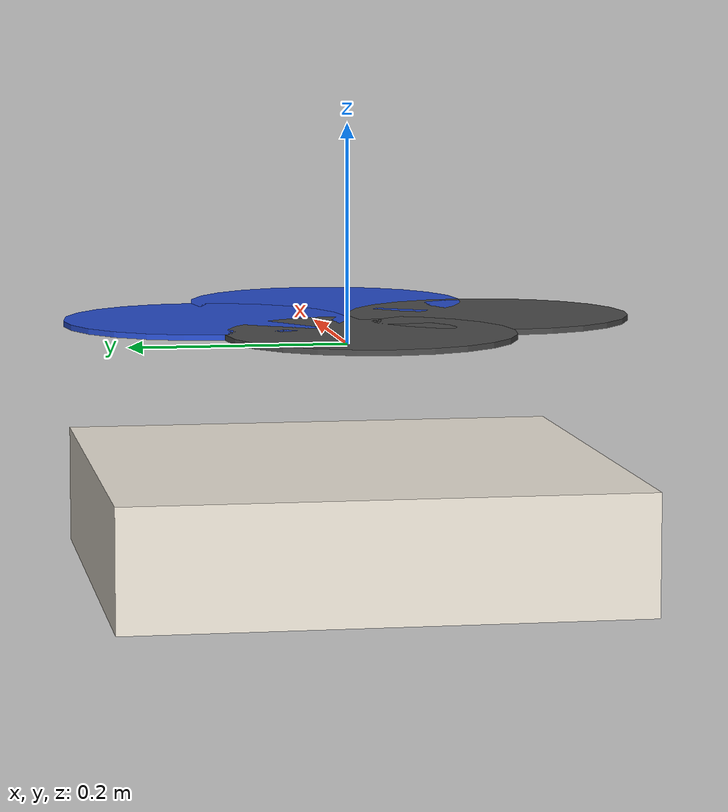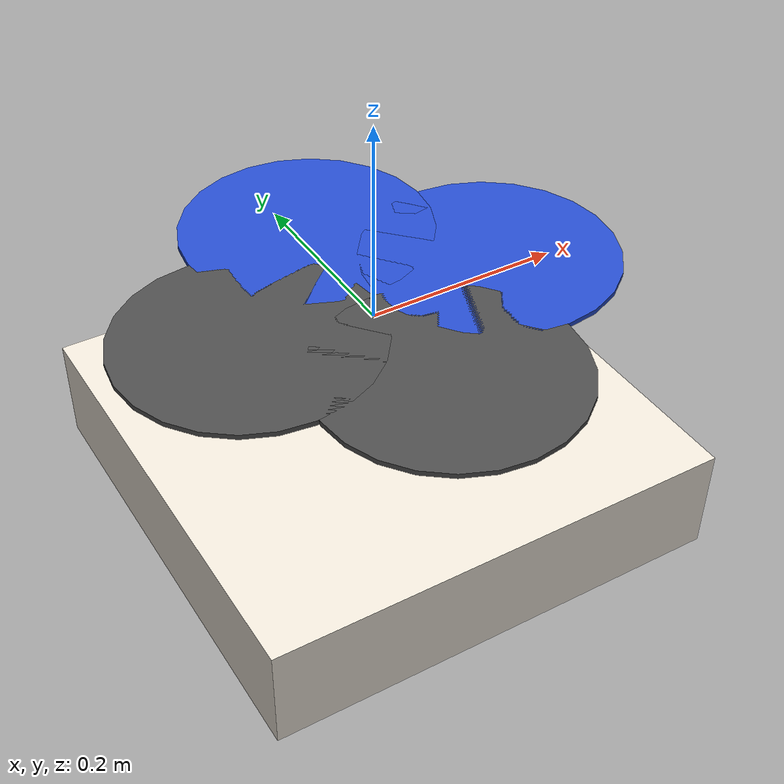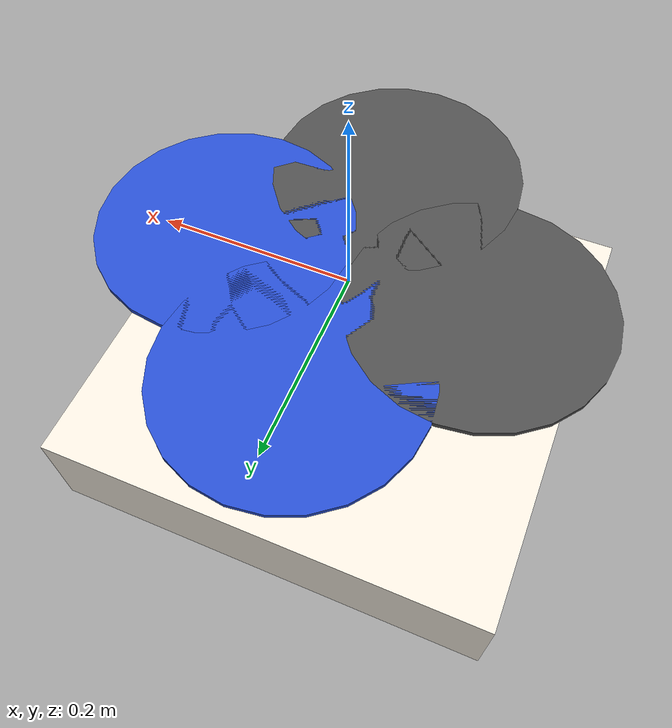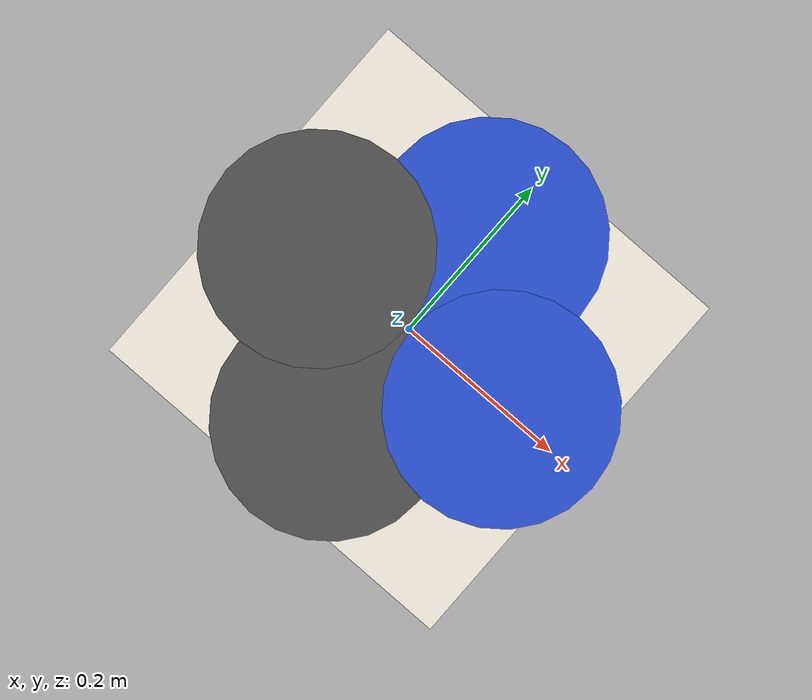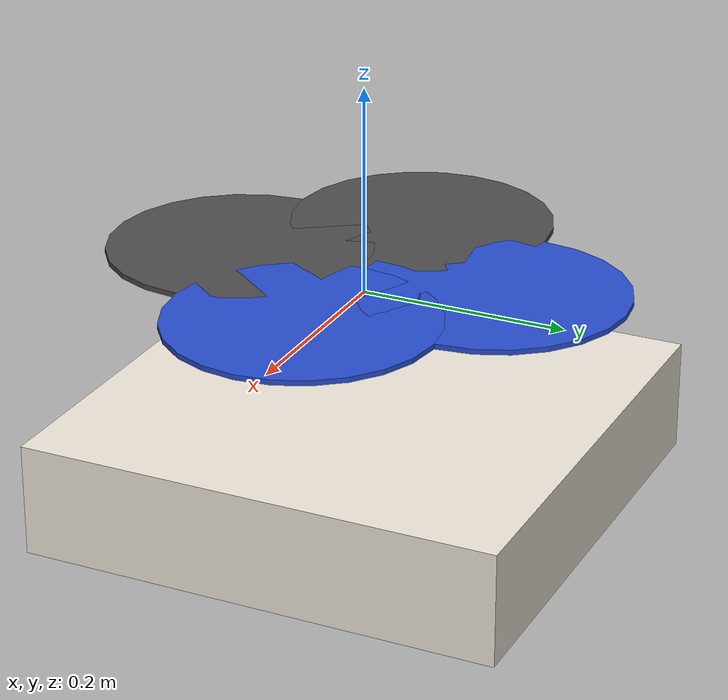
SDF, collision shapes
<!-- thaqib_1_prototype: identical physics to rocket_drone, different visual mesh -->
<sdf version='1.6'>
  <model name='thaqib_1_prototype'>
    <link name='base_link'>
      <pose>0 0 0 0 0 0</pose>
      <inertial>
        <pose>0 0 0 0 0 0</pose>
        <mass>0.448522</mass>
        <inertia>
          <ixx>0.00870895</ixx>
          <ixy>0</ixy>
          <ixz>0</ixz>
          <iyy>0.00870895</iyy>
          <iyz>0</iyz>
          <izz>0.0165132</izz>
        </inertia>
      </inertial>
      <collision name='base_link_inertia_collision'>
        <!-- Box height is 0.11m, so -0.16 keeps its bottom at z=0 instead of intersecting terrain -->
        <pose>0 0 -0.16 0 0 0</pose>
        <geometry>
          <box>
            <size>0.47 0.47 0.11</size>
          </box>
        </geometry>
        <surface>
          <contact>
            <ode>
              <max_vel>100.0</max_vel>
              <min_depth>0.001</min_depth>
            </ode>
          </contact>
          <friction>
            <ode>
              <mu>1.0</mu>
              <mu2>1.0</mu2>
            </ode>
          </friction>
          <collide_bitmask>0x01</collide_bitmask>
        </surface>
      </collision>
      <visual name='base_link_inertia_visual'>
        <pose>0 0 -0.10 0 0 0</pose>
        <geometry>
          <mesh>
            <scale>0.001 0.001 0.001</scale>
            <uri>model://thaqib_1_prototype/meshes/thaqib_1_prototype.stl</uri>
          </mesh>
        </geometry>
        <material>
          <ambient>0.93 0.90 0.85 1</ambient>
          <diffuse>0.93 0.90 0.85 1</diffuse>
          <specular>0.3 0.3 0.3 1</specular>
        </material>
      </visual>
      <!-- FPV camera sensor (30 degrees below horizon) -->
      <sensor name='fpv_cam' type='camera'>
        <pose>0 0 0.262 0 -1.396263402 0</pose>
        <camera>
          <horizontal_fov>2.0</horizontal_fov>
          <image>
            <width>640</width>
            <height>480</height>
          </image>
          <clip>
            <near>0.05</near>
            <far>15000</far>
          </clip>
        </camera>
        <always_on>1</always_on>
        <update_rate>30</update_rate>
        <visualize>1</visualize>
      </sensor>
      <!-- Chase camera sensor (third-person follow view) -->
      <sensor name='chase_cam' type='camera'>
        <pose>-1.5 0 0.8 0 0.5236 0</pose>
        <camera>
          <horizontal_fov>1.4</horizontal_fov>
          <image>
            <width>640</width>
            <height>480</height>
          </image>
          <clip>
            <near>0.1</near>
            <far>15000</far>
          </clip>
        </camera>
        <always_on>1</always_on>
        <update_rate>30</update_rate>
        <visualize>0</visualize>
      </sensor>
      <gravity>1</gravity>
    </link>
    <link name='imu_link'>
      <pose>0 0 0.02 0 0 0</pose>
      <inertial>
        <pose>0 0 0 0 0 0</pose>
        <mass>0.015</mass>
        <inertia>
          <ixx>1e-05</ixx>
          <ixy>0</ixy>
          <ixz>0</ixz>
          <iyy>1e-05</iyy>
          <iyz>0</iyz>
          <izz>1e-05</izz>
        </inertia>
      </inertial>
      <sensor name="imu_sensor" type="imu">
        <pose>0 0 0 3.141593 0 0</pose>
        <always_on>1</always_on>
        <update_rate>1000.0</update_rate>
      </sensor>
    </link>
    <joint name='imu_joint' type='revolute'>
      <child>imu_link</child>
      <parent>base_link</parent>
      <axis>
        <xyz>0 0 1</xyz>
        <limit>
          <lower>0</lower>
          <upper>0</upper>
          <effort>0</effort>
          <velocity>0</velocity>
        </limit>
        <dynamics>
          <damping>1.0</damping>
        </dynamics>
      </axis>
      <physics>
        <ode>
          <implicit_spring_damper>1</implicit_spring_damper>
        </ode>
      </physics>
    </joint>
    <link name='rotor_0'>
      <pose>0.130 0 0.023 0 0 0</pose>
      <inertial>
        <pose>0 0 0 0 0 0</pose>
        <mass>0.005</mass>
        <inertia>
          <ixx>9.75e-07</ixx>
          <ixy>0</ixy>
          <ixz>0</ixz>
          <iyy>0.000273104</iyy>
          <iyz>0</iyz>
          <izz>0.000274004</izz>
        </inertia>
      </inertial>
      <collision name='rotor_0_collision'>
        <pose>0 0 0 0 0 0</pose>
        <geometry>
          <cylinder>
            <length>0.005</length>
            <radius>0.128</radius>
          </cylinder>
        </geometry>
        <surface>
          <contact>
            <ode/>
          </contact>
          <friction>
            <ode/>
          </friction>
          <collide_bitmask>0x02</collide_bitmask>
        </surface>
      </collision>
      <visual name='rotor_0_visual'>
        <pose>-0.01 0 -0.11 0 0 0</pose>
        <geometry>
          <mesh>
            <scale>0.5 0.5 0.5</scale>
            <uri>model://thaqib_1_prototype/meshes/rocket_drone_prop_ccw.dae</uri>
          </mesh>
        </geometry>
        <material>
          <script>
            <name>Gazebo/Blue</name>
            <uri>file://media/materials/scripts/gazebo.material</uri>
          </script>
        </material>
      </visual>
      <gravity>1</gravity>
      <velocity_decay/>
    </link>
    <joint name='rotor_0_joint' type='revolute'>
      <child>rotor_0</child>
      <parent>base_link</parent>
      <axis>
        <xyz>0 0 1</xyz>
        <limit>
          <lower>-1e+16</lower>
          <upper>1e+16</upper>
        </limit>
        <dynamics>
          <damping>0.004</damping>
        </dynamics>
      </axis>
      <physics>
        <ode>
          <implicit_spring_damper>1</implicit_spring_damper>
        </ode>
      </physics>
    </joint>
    <link name='rotor_1'>
      <pose>-0.130 0 0.023 0 0 0</pose>
      <inertial>
        <pose>0 0 0 0 0 0</pose>
        <mass>0.005</mass>
        <inertia>
          <ixx>9.75e-07</ixx>
          <ixy>0</ixy>
          <ixz>0</ixz>
          <iyy>0.000273104</iyy>
          <iyz>0</iyz>
          <izz>0.000274004</izz>
        </inertia>
      </inertial>
      <collision name='rotor_1_collision'>
        <pose>0 0 0 0 0 0</pose>
        <geometry>
          <cylinder>
            <length>0.005</length>
            <radius>0.128</radius>
          </cylinder>
        </geometry>
        <surface>
          <contact>
            <ode/>
          </contact>
          <friction>
            <ode/>
          </friction>
          <collide_bitmask>0x02</collide_bitmask>
        </surface>
      </collision>
      <visual name='rotor_1_visual'>
        <pose>0.01 0 -0.11 0 0 0</pose>
        <geometry>
          <mesh>
            <scale>0.5 0.5 0.5</scale>
            <uri>model://thaqib_1_prototype/meshes/rocket_drone_prop_ccw.dae</uri>
          </mesh>
        </geometry>
        <material>
          <script>
            <name>Gazebo/DarkGrey</name>
            <uri>file://media/materials/scripts/gazebo.material</uri>
          </script>
        </material>
      </visual>
      <gravity>1</gravity>
      <velocity_decay/>
    </link>
    <joint name='rotor_1_joint' type='revolute'>
      <child>rotor_1</child>
      <parent>base_link</parent>
      <axis>
        <xyz>0 0 1</xyz>
        <limit>
          <lower>-1e+16</lower>
          <upper>1e+16</upper>
        </limit>
        <dynamics>
          <damping>0.004</damping>
        </dynamics>
      </axis>
      <physics>
        <ode>
          <implicit_spring_damper>1</implicit_spring_damper>
        </ode>
      </physics>
    </joint>
    <link name='rotor_2'>
      <pose>0 0.130 0.023 0 0 0</pose>
      <inertial>
        <pose>0 0 0 0 0 0</pose>
        <mass>0.005</mass>
        <inertia>
          <ixx>9.75e-07</ixx>
          <ixy>0</ixy>
          <ixz>0</ixz>
          <iyy>0.000273104</iyy>
          <iyz>0</iyz>
          <izz>0.000274004</izz>
        </inertia>
      </inertial>
      <collision name='rotor_2_collision'>
        <pose>0 0 0 0 0 0</pose>
        <geometry>
          <cylinder>
            <length>0.005</length>
            <radius>0.128</radius>
          </cylinder>
        </geometry>
        <surface>
          <contact>
            <ode/>
          </contact>
          <friction>
            <ode/>
          </friction>
          <collide_bitmask>0x02</collide_bitmask>
        </surface>
      </collision>
      <visual name='rotor_2_visual'>
        <pose>0 -0.01 -0.11 0 0 0</pose>
        <geometry>
          <mesh>
            <scale>0.5 0.5 0.5</scale>
            <uri>model://thaqib_1_prototype/meshes/rocket_drone_prop_cw.dae</uri>
          </mesh>
        </geometry>
        <material>
          <script>
            <name>Gazebo/Blue</name>
            <uri>file://media/materials/scripts/gazebo.material</uri>
          </script>
        </material>
      </visual>
      <gravity>1</gravity>
      <velocity_decay/>
    </link>
    <joint name='rotor_2_joint' type='revolute'>
      <child>rotor_2</child>
      <parent>base_link</parent>
      <axis>
        <xyz>0 0 1</xyz>
        <limit>
          <lower>-1e+16</lower>
          <upper>1e+16</upper>
        </limit>
        <dynamics>
          <damping>0.004</damping>
        </dynamics>
      </axis>
      <physics>
        <ode>
          <implicit_spring_damper>1</implicit_spring_damper>
        </ode>
      </physics>
    </joint>
    <link name='rotor_3'>
      <pose>0 -0.130 0.023 0 0 0</pose>
      <inertial>
        <pose>0 0 0 0 0 0</pose>
        <mass>0.005</mass>
        <inertia>
          <ixx>9.75e-07</ixx>
          <ixy>0</ixy>
          <ixz>0</ixz>
          <iyy>0.000273104</iyy>
          <iyz>0</iyz>
          <izz>0.000274004</izz>
        </inertia>
      </inertial>
      <collision name='rotor_3_collision'>
        <pose>0 0 0 0 0 0</pose>
        <geometry>
          <cylinder>
            <length>0.005</length>
            <radius>0.128</radius>
          </cylinder>
        </geometry>
        <surface>
          <contact>
            <ode/>
          </contact>
          <friction>
            <ode/>
          </friction>
          <collide_bitmask>0x02</collide_bitmask>
        </surface>
      </collision>
      <visual name='rotor_3_visual'>
        <pose>0 0.01 -0.11 0 0 0</pose>
        <geometry>
          <mesh>
            <scale>0.5 0.5 0.5</scale>
            <uri>model://thaqib_1_prototype/meshes/rocket_drone_prop_cw.dae</uri>
          </mesh>
        </geometry>
        <material>
          <script>
            <name>Gazebo/DarkGrey</name>
            <uri>file://media/materials/scripts/gazebo.material</uri>
          </script>
        </material>
      </visual>
      <gravity>1</gravity>
      <velocity_decay/>
    </link>
    <joint name='rotor_3_joint' type='revolute'>
      <child>rotor_3</child>
      <parent>base_link</parent>
      <axis>
        <xyz>0 0 1</xyz>
        <limit>
          <lower>-1e+16</lower>
          <upper>1e+16</upper>
        </limit>
        <dynamics>
          <damping>0.004</damping>
        </dynamics>
      </axis>
      <physics>
        <ode>
          <implicit_spring_damper>1</implicit_spring_damper>
        </ode>
      </physics>
    </joint>

    <!-- rotor_0 (front-right, CCW) -->
    <plugin name="gz::sim::systems::LiftDrag" filename="gz-sim-lift-drag-system">
      <a0>0.4</a0>
      <alpha_stall>1.4</alpha_stall>
      <cla>0.2500</cla>
      <cda>0.004</cda>
      <cma>0.00</cma>
      <cla_stall>-0.025</cla_stall>
      <cda_stall>0.0</cda_stall>
      <cma_stall>0.0</cma_stall>
      <area>0.018</area>
      <air_density>1.2041</air_density>
      <cp>0.084 0 0</cp>
      <forward>0 1 0</forward>
      <upward>0 0 1</upward>
      <link_name>rotor_0</link_name>
    </plugin>
    <plugin name="gz::sim::systems::LiftDrag" filename="gz-sim-lift-drag-system">
      <a0>0.4</a0>
      <alpha_stall>1.4</alpha_stall>
      <cla>0.2500</cla>
      <cda>0.004</cda>
      <cma>0.00</cma>
      <cla_stall>-0.025</cla_stall>
      <cda_stall>0.0</cda_stall>
      <cma_stall>0.0</cma_stall>
      <area>0.018</area>
      <air_density>1.2041</air_density>
      <cp>-0.084 0 0</cp>
      <forward>0 -1 0</forward>
      <upward>0 0 1</upward>
      <link_name>rotor_0</link_name>
    </plugin>

    <!-- rotor_1 (rear-left, CCW) -->
    <plugin name="gz::sim::systems::LiftDrag" filename="gz-sim-lift-drag-system">
      <a0>0.4</a0>
      <alpha_stall>1.4</alpha_stall>
      <cla>0.2500</cla>
      <cda>0.004</cda>
      <cma>0.00</cma>
      <cla_stall>-0.025</cla_stall>
      <cda_stall>0.0</cda_stall>
      <cma_stall>0.0</cma_stall>
      <area>0.018</area>
      <air_density>1.2041</air_density>
      <cp>0.084 0 0</cp>
      <forward>0 1 0</forward>
      <upward>0 0 1</upward>
      <link_name>rotor_1</link_name>
    </plugin>
    <plugin name="gz::sim::systems::LiftDrag" filename="gz-sim-lift-drag-system">
      <a0>0.4</a0>
      <alpha_stall>1.4</alpha_stall>
      <cla>0.2500</cla>
      <cda>0.004</cda>
      <cma>0.00</cma>
      <cla_stall>-0.025</cla_stall>
      <cda_stall>0.0</cda_stall>
      <cma_stall>0.0</cma_stall>
      <area>0.018</area>
      <air_density>1.2041</air_density>
      <cp>-0.084 0 0</cp>
      <forward>0 -1 0</forward>
      <upward>0 0 1</upward>
      <link_name>rotor_1</link_name>
    </plugin>

    <!-- rotor_2 (front-left, CW) -->
    <plugin name="gz::sim::systems::LiftDrag" filename="gz-sim-lift-drag-system">
      <a0>0.4</a0>
      <alpha_stall>1.4</alpha_stall>
      <cla>0.2500</cla>
      <cda>0.004</cda>
      <cma>0.00</cma>
      <cla_stall>-0.025</cla_stall>
      <cda_stall>0.0</cda_stall>
      <cma_stall>0.0</cma_stall>
      <area>0.018</area>
      <air_density>1.2041</air_density>
      <cp>0.084 0 0</cp>
      <forward>0 -1 0</forward>
      <upward>0 0 1</upward>
      <link_name>rotor_2</link_name>
    </plugin>
    <plugin name="gz::sim::systems::LiftDrag" filename="gz-sim-lift-drag-system">
      <a0>0.4</a0>
      <alpha_stall>1.4</alpha_stall>
      <cla>0.2500</cla>
      <cda>0.004</cda>
      <cma>0.00</cma>
      <cla_stall>-0.025</cla_stall>
      <cda_stall>0.0</cda_stall>
      <cma_stall>0.0</cma_stall>
      <area>0.018</area>
      <air_density>1.2041</air_density>
      <cp>-0.084 0 0</cp>
      <forward>0 1 0</forward>
      <upward>0 0 1</upward>
      <link_name>rotor_2</link_name>
    </plugin>

    <!-- rotor_3 (rear-right, CW) -->
    <plugin name="gz::sim::systems::LiftDrag" filename="gz-sim-lift-drag-system">
      <a0>0.4</a0>
      <alpha_stall>1.4</alpha_stall>
      <cla>0.2500</cla>
      <cda>0.004</cda>
      <cma>0.00</cma>
      <cla_stall>-0.025</cla_stall>
      <cda_stall>0.0</cda_stall>
      <cma_stall>0.0</cma_stall>
      <area>0.018</area>
      <air_density>1.2041</air_density>
      <cp>0.084 0 0</cp>
      <forward>0 -1 0</forward>
      <upward>0 0 1</upward>
      <link_name>rotor_3</link_name>
    </plugin>
    <plugin name="gz::sim::systems::LiftDrag" filename="gz-sim-lift-drag-system">
      <a0>0.4</a0>
      <alpha_stall>1.4</alpha_stall>
      <cla>0.2500</cla>
      <cda>0.004</cda>
      <cma>0.00</cma>
      <cla_stall>-0.025</cla_stall>
      <cda_stall>0.0</cda_stall>
      <cma_stall>0.0</cma_stall>
      <area>0.018</area>
      <air_density>1.2041</air_density>
      <cp>-0.084 0 0</cp>
      <forward>0 1 0</forward>
      <upward>0 0 1</upward>
      <link_name>rotor_3</link_name>
    </plugin>

    <plugin name="gz::sim::systems::BetaflightPlugin" filename="BetaflightPlugin">
      <imuName>imu_sensor</imuName>
      <connectionTimeoutMaxCount>5</connectionTimeoutMaxCount>
      <!-- Motor mapping: SITL sends servo[0]=BF Motor 1 (FR), [1]=Motor 2 (RL), [2]=Motor 3 (FL), [3]=Motor 0 (RR) -->
      <rotor id="0">
        <vel_p_gain>0.01</vel_p_gain>
        <vel_i_gain>0</vel_i_gain>
        <vel_d_gain>0</vel_d_gain>
        <vel_i_max>0</vel_i_max>
        <vel_i_min>0</vel_i_min>
        <vel_cmd_max>5000.0</vel_cmd_max>
        <vel_cmd_min>-5000.0</vel_cmd_min>
        <jointName>rotor_0_joint</jointName>
        <turningDirection>ccw</turningDirection>
        <rotorVelocitySlowdownSim>1</rotorVelocitySlowdownSim>
      </rotor>
      <rotor id="1">
        <vel_p_gain>0.01</vel_p_gain>
        <vel_i_gain>0</vel_i_gain>
        <vel_d_gain>0</vel_d_gain>
        <vel_i_max>0</vel_i_max>
        <vel_i_min>0</vel_i_min>
        <vel_cmd_max>5000.0</vel_cmd_max>
        <vel_cmd_min>-5000.0</vel_cmd_min>
        <jointName>rotor_1_joint</jointName>
        <turningDirection>ccw</turningDirection>
        <rotorVelocitySlowdownSim>1</rotorVelocitySlowdownSim>
      </rotor>
      <rotor id="2">
        <vel_p_gain>0.01</vel_p_gain>
        <vel_i_gain>0</vel_i_gain>
        <vel_d_gain>0</vel_d_gain>
        <vel_i_max>0</vel_i_max>
        <vel_i_min>0</vel_i_min>
        <vel_cmd_max>5000.0</vel_cmd_max>
        <vel_cmd_min>-5000.0</vel_cmd_min>
        <jointName>rotor_2_joint</jointName>
        <turningDirection>cw</turningDirection>
        <rotorVelocitySlowdownSim>1</rotorVelocitySlowdownSim>
      </rotor>
      <rotor id="3">
        <vel_p_gain>0.01</vel_p_gain>
        <vel_i_gain>0</vel_i_gain>
        <vel_d_gain>0</vel_d_gain>
        <vel_i_max>0</vel_i_max>
        <vel_i_min>0</vel_i_min>
        <vel_cmd_max>5000.0</vel_cmd_max>
        <vel_cmd_min>-5000.0</vel_cmd_min>
        <jointName>rotor_3_joint</jointName>
        <turningDirection>cw</turningDirection>
        <rotorVelocitySlowdownSim>1</rotorVelocitySlowdownSim>
      </rotor>
    </plugin>

    <plugin name="gz::sim::systems::ViscousDragPlugin"
            filename="ViscousDragPlugin">
      <link_name>base_link</link_name>
      <linear_damping_x>0.1</linear_damping_x>
      <linear_damping_y>0.4</linear_damping_y>
      <linear_damping_z>0.03</linear_damping_z>
      <quadratic_damping_x>0.05</quadratic_damping_x>
      <quadratic_damping_y>0.03</quadratic_damping_y>
      <quadratic_damping_z>0.01</quadratic_damping_z>
      <angular_damping>0.03</angular_damping>
    </plugin>

    <static>0</static>
  </model>
</sdf>
